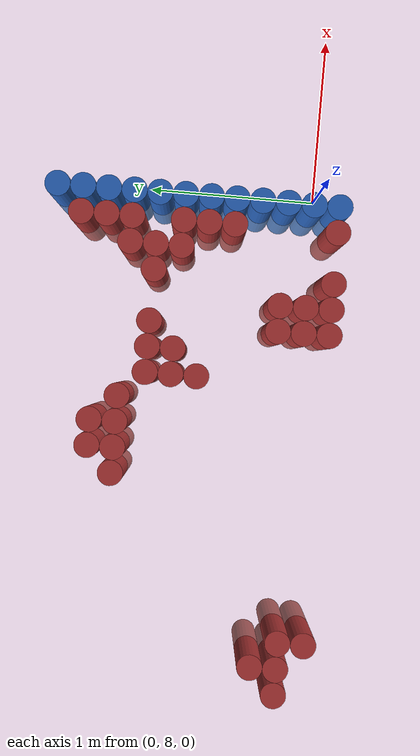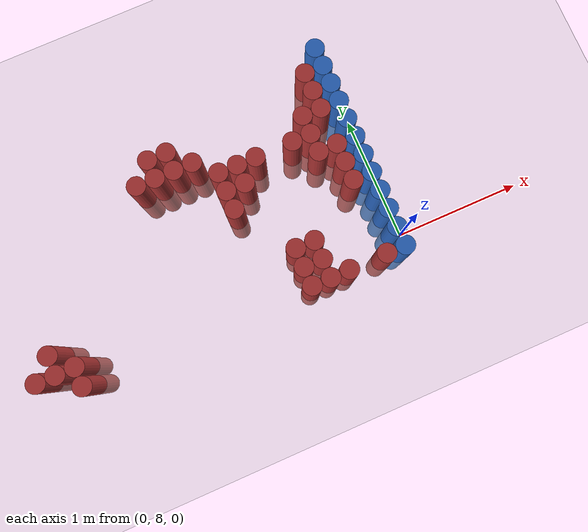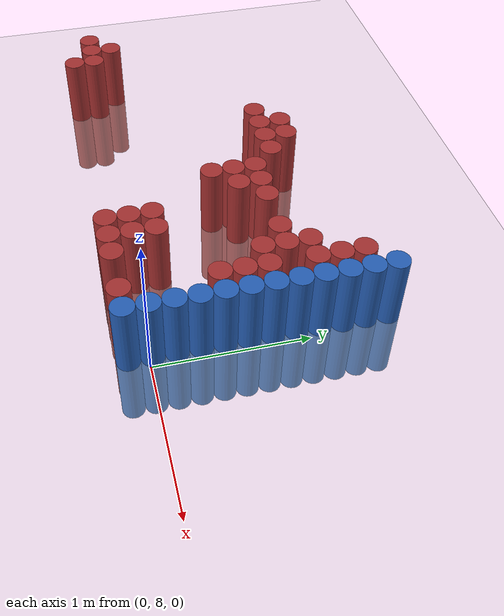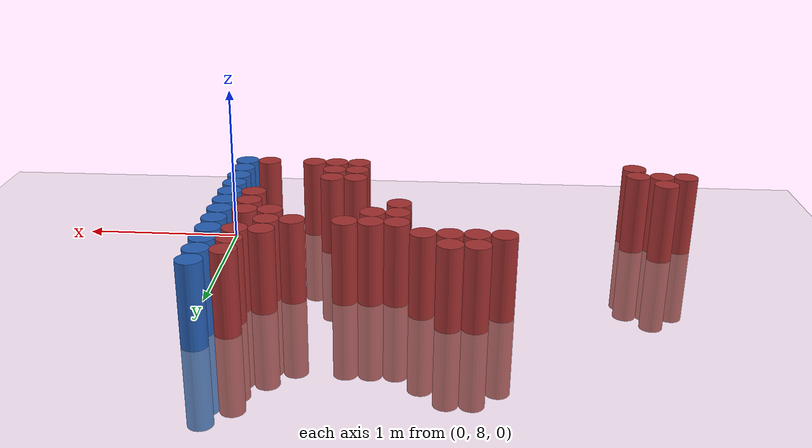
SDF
<sdf version="1.6">
 <world name="default">
  <model name="ground_plane">
   <static>1</static>
   <link name="link">
    <collision name="collision">
     <geometry><plane><normal>0 0 1</normal><size>100 100</size></plane></geometry>
     <surface><friction><ode><mu>100</mu><mu2>50</mu2></ode></friction></surface>
    </collision>
    <visual name="visual">
     <cast_shadows>0</cast_shadows>
     <geometry><plane><normal>0 0 1</normal><size>100 100</size></plane></geometry>
     <material>
      <script><uri>file://media/materials/scripts/gazebo.material</uri><name>Gazebo/Grey</name></script>
     </material>
    </visual>
   </link>
  </model>
  <model name="unit_cylinder_167">
   <static>1</static>
   <pose>-2.925000 8.025000 0.000000 0.000000 0.000000 0.000000</pose>
   <link name="link">
    <inertial>
     <mass>1</mass>
     <inertia><ixx>0.145833</ixx><ixy>0</ixy><ixz>0</ixz><iyy>0.145833</iyy><iyz>0</iyz><izz>0.125</izz></inertia>
    </inertial>
    <collision name="collision">
     <geometry><cylinder><radius>0.075000</radius><length>1</length></cylinder></geometry>
    </collision>
    <visual name="visual">
     <geometry><cylinder><radius>0.075000</radius><length>1</length></cylinder></geometry>
     <material>
      <ambient>0.648000 0.192000 0.192000 1</ambient>
      <diffuse>0.648000 0.192000 0.192000 1</diffuse>
     </material>
     <material>
      <script><name>Gazebo/Grey</name><uri>file://media/materials/scripts/gazebo.material</uri></script>
     </material>
    </visual>
   </link>
  </model>
  <model name="unit_cylinder_173">
   <static>1</static>
   <pose>-2.775000 8.025000 0.000000 0.000000 0.000000 0.000000</pose>
   <link name="link">
    <inertial>
     <mass>1</mass>
     <inertia><ixx>0.145833</ixx><ixy>0</ixy><ixz>0</ixz><iyy>0.145833</iyy><iyz>0</iyz><izz>0.125</izz></inertia>
    </inertial>
    <collision name="collision">
     <geometry><cylinder><radius>0.075000</radius><length>1</length></cylinder></geometry>
    </collision>
    <visual name="visual">
     <geometry><cylinder><radius>0.075000</radius><length>1</length></cylinder></geometry>
     <material>
      <ambient>0.648000 0.192000 0.192000 1</ambient>
      <diffuse>0.648000 0.192000 0.192000 1</diffuse>
     </material>
     <material>
      <script><name>Gazebo/Grey</name><uri>file://media/materials/scripts/gazebo.material</uri></script>
     </material>
    </visual>
   </link>
  </model>
  <model name="unit_cylinder_174">
   <static>1</static>
   <pose>-2.775000 8.175000 0.000000 0.000000 0.000000 0.000000</pose>
   <link name="link">
    <inertial>
     <mass>1</mass>
     <inertia><ixx>0.145833</ixx><ixy>0</ixy><ixz>0</ixz><iyy>0.145833</iyy><iyz>0</iyz><izz>0.125</izz></inertia>
    </inertial>
    <collision name="collision">
     <geometry><cylinder><radius>0.075000</radius><length>1</length></cylinder></geometry>
    </collision>
    <visual name="visual">
     <geometry><cylinder><radius>0.075000</radius><length>1</length></cylinder></geometry>
     <material>
      <ambient>0.648000 0.192000 0.192000 1</ambient>
      <diffuse>0.648000 0.192000 0.192000 1</diffuse>
     </material>
     <material>
      <script><name>Gazebo/Grey</name><uri>file://media/materials/scripts/gazebo.material</uri></script>
     </material>
    </visual>
   </link>
  </model>
  <model name="unit_cylinder_176">
   <static>1</static>
   <pose>-2.625000 7.875000 0.000000 0.000000 0.000000 0.000000</pose>
   <link name="link">
    <inertial>
     <mass>1</mass>
     <inertia><ixx>0.145833</ixx><ixy>0</ixy><ixz>0</ixz><iyy>0.145833</iyy><iyz>0</iyz><izz>0.125</izz></inertia>
    </inertial>
    <collision name="collision">
     <geometry><cylinder><radius>0.075000</radius><length>1</length></cylinder></geometry>
    </collision>
    <visual name="visual">
     <geometry><cylinder><radius>0.075000</radius><length>1</length></cylinder></geometry>
     <material>
      <ambient>0.648000 0.192000 0.192000 1</ambient>
      <diffuse>0.648000 0.192000 0.192000 1</diffuse>
     </material>
     <material>
      <script><name>Gazebo/Grey</name><uri>file://media/materials/scripts/gazebo.material</uri></script>
     </material>
    </visual>
   </link>
  </model>
  <model name="unit_cylinder_177">
   <static>1</static>
   <pose>-2.625000 8.025000 0.000000 0.000000 0.000000 0.000000</pose>
   <link name="link">
    <inertial>
     <mass>1</mass>
     <inertia><ixx>0.145833</ixx><ixy>0</ixy><ixz>0</ixz><iyy>0.145833</iyy><iyz>0</iyz><izz>0.125</izz></inertia>
    </inertial>
    <collision name="collision">
     <geometry><cylinder><radius>0.075000</radius><length>1</length></cylinder></geometry>
    </collision>
    <visual name="visual">
     <geometry><cylinder><radius>0.075000</radius><length>1</length></cylinder></geometry>
     <material>
      <ambient>0.648000 0.192000 0.192000 1</ambient>
      <diffuse>0.648000 0.192000 0.192000 1</diffuse>
     </material>
     <material>
      <script><name>Gazebo/Grey</name><uri>file://media/materials/scripts/gazebo.material</uri></script>
     </material>
    </visual>
   </link>
  </model>
  <model name="unit_cylinder_194">
   <static>1</static>
   <pose>-1.725000 9.075000 0.000000 0.000000 0.000000 0.000000</pose>
   <link name="link">
    <inertial>
     <mass>1</mass>
     <inertia><ixx>0.145833</ixx><ixy>0</ixy><ixz>0</ixz><iyy>0.145833</iyy><iyz>0</iyz><izz>0.125</izz></inertia>
    </inertial>
    <collision name="collision">
     <geometry><cylinder><radius>0.075000</radius><length>1</length></cylinder></geometry>
    </collision>
    <visual name="visual">
     <geometry><cylinder><radius>0.075000</radius><length>1</length></cylinder></geometry>
     <material>
      <ambient>0.648000 0.192000 0.192000 1</ambient>
      <diffuse>0.648000 0.192000 0.192000 1</diffuse>
     </material>
     <material>
      <script><name>Gazebo/Grey</name><uri>file://media/materials/scripts/gazebo.material</uri></script>
     </material>
    </visual>
   </link>
  </model>
  <model name="unit_cylinder_195">
   <static>1</static>
   <pose>-1.575000 9.075000 0.000000 0.000000 0.000000 0.000000</pose>
   <link name="link">
    <inertial>
     <mass>1</mass>
     <inertia><ixx>0.145833</ixx><ixy>0</ixy><ixz>0</ixz><iyy>0.145833</iyy><iyz>0</iyz><izz>0.125</izz></inertia>
    </inertial>
    <collision name="collision">
     <geometry><cylinder><radius>0.075000</radius><length>1</length></cylinder></geometry>
    </collision>
    <visual name="visual">
     <geometry><cylinder><radius>0.075000</radius><length>1</length></cylinder></geometry>
     <material>
      <ambient>0.648000 0.192000 0.192000 1</ambient>
      <diffuse>0.648000 0.192000 0.192000 1</diffuse>
     </material>
     <material>
      <script><name>Gazebo/Grey</name><uri>file://media/materials/scripts/gazebo.material</uri></script>
     </material>
    </visual>
   </link>
  </model>
  <model name="unit_cylinder_196">
   <static>1</static>
   <pose>-1.575000 9.225000 0.000000 0.000000 0.000000 0.000000</pose>
   <link name="link">
    <inertial>
     <mass>1</mass>
     <inertia><ixx>0.145833</ixx><ixy>0</ixy><ixz>0</ixz><iyy>0.145833</iyy><iyz>0</iyz><izz>0.125</izz></inertia>
    </inertial>
    <collision name="collision">
     <geometry><cylinder><radius>0.075000</radius><length>1</length></cylinder></geometry>
    </collision>
    <visual name="visual">
     <geometry><cylinder><radius>0.075000</radius><length>1</length></cylinder></geometry>
     <material>
      <ambient>0.648000 0.192000 0.192000 1</ambient>
      <diffuse>0.648000 0.192000 0.192000 1</diffuse>
     </material>
     <material>
      <script><name>Gazebo/Grey</name><uri>file://media/materials/scripts/gazebo.material</uri></script>
     </material>
    </visual>
   </link>
  </model>
  <model name="unit_cylinder_198">
   <static>1</static>
   <pose>-1.425000 9.075000 0.000000 0.000000 0.000000 0.000000</pose>
   <link name="link">
    <inertial>
     <mass>1</mass>
     <inertia><ixx>0.145833</ixx><ixy>0</ixy><ixz>0</ixz><iyy>0.145833</iyy><iyz>0</iyz><izz>0.125</izz></inertia>
    </inertial>
    <collision name="collision">
     <geometry><cylinder><radius>0.075000</radius><length>1</length></cylinder></geometry>
    </collision>
    <visual name="visual">
     <geometry><cylinder><radius>0.075000</radius><length>1</length></cylinder></geometry>
     <material>
      <ambient>0.648000 0.192000 0.192000 1</ambient>
      <diffuse>0.648000 0.192000 0.192000 1</diffuse>
     </material>
     <material>
      <script><name>Gazebo/Grey</name><uri>file://media/materials/scripts/gazebo.material</uri></script>
     </material>
    </visual>
   </link>
  </model>
  <model name="unit_cylinder_199">
   <static>1</static>
   <pose>-1.425000 9.225000 0.000000 0.000000 0.000000 0.000000</pose>
   <link name="link">
    <inertial>
     <mass>1</mass>
     <inertia><ixx>0.145833</ixx><ixy>0</ixy><ixz>0</ixz><iyy>0.145833</iyy><iyz>0</iyz><izz>0.125</izz></inertia>
    </inertial>
    <collision name="collision">
     <geometry><cylinder><radius>0.075000</radius><length>1</length></cylinder></geometry>
    </collision>
    <visual name="visual">
     <geometry><cylinder><radius>0.075000</radius><length>1</length></cylinder></geometry>
     <material>
      <ambient>0.648000 0.192000 0.192000 1</ambient>
      <diffuse>0.648000 0.192000 0.192000 1</diffuse>
     </material>
     <material>
      <script><name>Gazebo/Grey</name><uri>file://media/materials/scripts/gazebo.material</uri></script>
     </material>
    </visual>
   </link>
  </model>
  <model name="unit_cylinder_201">
   <static>1</static>
   <pose>-1.275000 9.075000 0.000000 0.000000 0.000000 0.000000</pose>
   <link name="link">
    <inertial>
     <mass>1</mass>
     <inertia><ixx>0.145833</ixx><ixy>0</ixy><ixz>0</ixz><iyy>0.145833</iyy><iyz>0</iyz><izz>0.125</izz></inertia>
    </inertial>
    <collision name="collision">
     <geometry><cylinder><radius>0.075000</radius><length>1</length></cylinder></geometry>
    </collision>
    <visual name="visual">
     <geometry><cylinder><radius>0.075000</radius><length>1</length></cylinder></geometry>
     <material>
      <ambient>0.648000 0.192000 0.192000 1</ambient>
      <diffuse>0.648000 0.192000 0.192000 1</diffuse>
     </material>
     <material>
      <script><name>Gazebo/Grey</name><uri>file://media/materials/scripts/gazebo.material</uri></script>
     </material>
    </visual>
   </link>
  </model>
  <model name="unit_cylinder_203">
   <static>1</static>
   <pose>-1.125000 8.625000 0.000000 0.000000 0.000000 0.000000</pose>
   <link name="link">
    <inertial>
     <mass>1</mass>
     <inertia><ixx>0.145833</ixx><ixy>0</ixy><ixz>0</ixz><iyy>0.145833</iyy><iyz>0</iyz><izz>0.125</izz></inertia>
    </inertial>
    <collision name="collision">
     <geometry><cylinder><radius>0.075000</radius><length>1</length></cylinder></geometry>
    </collision>
    <visual name="visual">
     <geometry><cylinder><radius>0.075000</radius><length>1</length></cylinder></geometry>
     <material>
      <ambient>0.648000 0.192000 0.192000 1</ambient>
      <diffuse>0.648000 0.192000 0.192000 1</diffuse>
     </material>
     <material>
      <script><name>Gazebo/Grey</name><uri>file://media/materials/scripts/gazebo.material</uri></script>
     </material>
    </visual>
   </link>
  </model>
  <model name="unit_cylinder_204">
   <static>1</static>
   <pose>-1.125000 8.775000 0.000000 0.000000 0.000000 0.000000</pose>
   <link name="link">
    <inertial>
     <mass>1</mass>
     <inertia><ixx>0.145833</ixx><ixy>0</ixy><ixz>0</ixz><iyy>0.145833</iyy><iyz>0</iyz><izz>0.125</izz></inertia>
    </inertial>
    <collision name="collision">
     <geometry><cylinder><radius>0.075000</radius><length>1</length></cylinder></geometry>
    </collision>
    <visual name="visual">
     <geometry><cylinder><radius>0.075000</radius><length>1</length></cylinder></geometry>
     <material>
      <ambient>0.648000 0.192000 0.192000 1</ambient>
      <diffuse>0.648000 0.192000 0.192000 1</diffuse>
     </material>
     <material>
      <script><name>Gazebo/Grey</name><uri>file://media/materials/scripts/gazebo.material</uri></script>
     </material>
    </visual>
   </link>
  </model>
  <model name="unit_cylinder_205">
   <static>1</static>
   <pose>-1.125000 8.925000 0.000000 0.000000 0.000000 0.000000</pose>
   <link name="link">
    <inertial>
     <mass>1</mass>
     <inertia><ixx>0.145833</ixx><ixy>0</ixy><ixz>0</ixz><iyy>0.145833</iyy><iyz>0</iyz><izz>0.125</izz></inertia>
    </inertial>
    <collision name="collision">
     <geometry><cylinder><radius>0.075000</radius><length>1</length></cylinder></geometry>
    </collision>
    <visual name="visual">
     <geometry><cylinder><radius>0.075000</radius><length>1</length></cylinder></geometry>
     <material>
      <ambient>0.648000 0.192000 0.192000 1</ambient>
      <diffuse>0.648000 0.192000 0.192000 1</diffuse>
     </material>
     <material>
      <script><name>Gazebo/Grey</name><uri>file://media/materials/scripts/gazebo.material</uri></script>
     </material>
    </visual>
   </link>
  </model>
  <model name="unit_cylinder_209">
   <static>1</static>
   <pose>-0.975000 8.775000 0.000000 0.000000 0.000000 0.000000</pose>
   <link name="link">
    <inertial>
     <mass>1</mass>
     <inertia><ixx>0.145833</ixx><ixy>0</ixy><ixz>0</ixz><iyy>0.145833</iyy><iyz>0</iyz><izz>0.125</izz></inertia>
    </inertial>
    <collision name="collision">
     <geometry><cylinder><radius>0.075000</radius><length>1</length></cylinder></geometry>
    </collision>
    <visual name="visual">
     <geometry><cylinder><radius>0.075000</radius><length>1</length></cylinder></geometry>
     <material>
      <ambient>0.648000 0.192000 0.192000 1</ambient>
      <diffuse>0.648000 0.192000 0.192000 1</diffuse>
     </material>
     <material>
      <script><name>Gazebo/Grey</name><uri>file://media/materials/scripts/gazebo.material</uri></script>
     </material>
    </visual>
   </link>
  </model>
  <model name="unit_cylinder_210">
   <static>1</static>
   <pose>-0.975000 8.925000 0.000000 0.000000 0.000000 0.000000</pose>
   <link name="link">
    <inertial>
     <mass>1</mass>
     <inertia><ixx>0.145833</ixx><ixy>0</ixy><ixz>0</ixz><iyy>0.145833</iyy><iyz>0</iyz><izz>0.125</izz></inertia>
    </inertial>
    <collision name="collision">
     <geometry><cylinder><radius>0.075000</radius><length>1</length></cylinder></geometry>
    </collision>
    <visual name="visual">
     <geometry><cylinder><radius>0.075000</radius><length>1</length></cylinder></geometry>
     <material>
      <ambient>0.648000 0.192000 0.192000 1</ambient>
      <diffuse>0.648000 0.192000 0.192000 1</diffuse>
     </material>
     <material>
      <script><name>Gazebo/Grey</name><uri>file://media/materials/scripts/gazebo.material</uri></script>
     </material>
    </visual>
   </link>
  </model>
  <model name="unit_cylinder_213">
   <static>1</static>
   <pose>-0.825000 7.875000 0.000000 0.000000 0.000000 0.000000</pose>
   <link name="link">
    <inertial>
     <mass>1</mass>
     <inertia><ixx>0.145833</ixx><ixy>0</ixy><ixz>0</ixz><iyy>0.145833</iyy><iyz>0</iyz><izz>0.125</izz></inertia>
    </inertial>
    <collision name="collision">
     <geometry><cylinder><radius>0.075000</radius><length>1</length></cylinder></geometry>
    </collision>
    <visual name="visual">
     <geometry><cylinder><radius>0.075000</radius><length>1</length></cylinder></geometry>
     <material>
      <ambient>0.648000 0.192000 0.192000 1</ambient>
      <diffuse>0.648000 0.192000 0.192000 1</diffuse>
     </material>
     <material>
      <script><name>Gazebo/Grey</name><uri>file://media/materials/scripts/gazebo.material</uri></script>
     </material>
    </visual>
   </link>
  </model>
  <model name="unit_cylinder_214">
   <static>1</static>
   <pose>-0.825000 8.025000 0.000000 0.000000 0.000000 0.000000</pose>
   <link name="link">
    <inertial>
     <mass>1</mass>
     <inertia><ixx>0.145833</ixx><ixy>0</ixy><ixz>0</ixz><iyy>0.145833</iyy><iyz>0</iyz><izz>0.125</izz></inertia>
    </inertial>
    <collision name="collision">
     <geometry><cylinder><radius>0.075000</radius><length>1</length></cylinder></geometry>
    </collision>
    <visual name="visual">
     <geometry><cylinder><radius>0.075000</radius><length>1</length></cylinder></geometry>
     <material>
      <ambient>0.648000 0.192000 0.192000 1</ambient>
      <diffuse>0.648000 0.192000 0.192000 1</diffuse>
     </material>
     <material>
      <script><name>Gazebo/Grey</name><uri>file://media/materials/scripts/gazebo.material</uri></script>
     </material>
    </visual>
   </link>
  </model>
  <model name="unit_cylinder_215">
   <static>1</static>
   <pose>-0.825000 8.175000 0.000000 0.000000 0.000000 0.000000</pose>
   <link name="link">
    <inertial>
     <mass>1</mass>
     <inertia><ixx>0.145833</ixx><ixy>0</ixy><ixz>0</ixz><iyy>0.145833</iyy><iyz>0</iyz><izz>0.125</izz></inertia>
    </inertial>
    <collision name="collision">
     <geometry><cylinder><radius>0.075000</radius><length>1</length></cylinder></geometry>
    </collision>
    <visual name="visual">
     <geometry><cylinder><radius>0.075000</radius><length>1</length></cylinder></geometry>
     <material>
      <ambient>0.648000 0.192000 0.192000 1</ambient>
      <diffuse>0.648000 0.192000 0.192000 1</diffuse>
     </material>
     <material>
      <script><name>Gazebo/Grey</name><uri>file://media/materials/scripts/gazebo.material</uri></script>
     </material>
    </visual>
   </link>
  </model>
  <model name="unit_cylinder_216">
   <static>1</static>
   <pose>-0.825000 8.925000 0.000000 0.000000 0.000000 0.000000</pose>
   <link name="link">
    <inertial>
     <mass>1</mass>
     <inertia><ixx>0.145833</ixx><ixy>0</ixy><ixz>0</ixz><iyy>0.145833</iyy><iyz>0</iyz><izz>0.125</izz></inertia>
    </inertial>
    <collision name="collision">
     <geometry><cylinder><radius>0.075000</radius><length>1</length></cylinder></geometry>
    </collision>
    <visual name="visual">
     <geometry><cylinder><radius>0.075000</radius><length>1</length></cylinder></geometry>
     <material>
      <ambient>0.648000 0.192000 0.192000 1</ambient>
      <diffuse>0.648000 0.192000 0.192000 1</diffuse>
     </material>
     <material>
      <script><name>Gazebo/Grey</name><uri>file://media/materials/scripts/gazebo.material</uri></script>
     </material>
    </visual>
   </link>
  </model>
  <model name="unit_cylinder_221">
   <static>1</static>
   <pose>-0.675000 7.875000 0.000000 0.000000 0.000000 0.000000</pose>
   <link name="link">
    <inertial>
     <mass>1</mass>
     <inertia><ixx>0.145833</ixx><ixy>0</ixy><ixz>0</ixz><iyy>0.145833</iyy><iyz>0</iyz><izz>0.125</izz></inertia>
    </inertial>
    <collision name="collision">
     <geometry><cylinder><radius>0.075000</radius><length>1</length></cylinder></geometry>
    </collision>
    <visual name="visual">
     <geometry><cylinder><radius>0.075000</radius><length>1</length></cylinder></geometry>
     <material>
      <ambient>0.648000 0.192000 0.192000 1</ambient>
      <diffuse>0.648000 0.192000 0.192000 1</diffuse>
     </material>
     <material>
      <script><name>Gazebo/Grey</name><uri>file://media/materials/scripts/gazebo.material</uri></script>
     </material>
    </visual>
   </link>
  </model>
  <model name="unit_cylinder_222">
   <static>1</static>
   <pose>-0.675000 8.025000 0.000000 0.000000 0.000000 0.000000</pose>
   <link name="link">
    <inertial>
     <mass>1</mass>
     <inertia><ixx>0.145833</ixx><ixy>0</ixy><ixz>0</ixz><iyy>0.145833</iyy><iyz>0</iyz><izz>0.125</izz></inertia>
    </inertial>
    <collision name="collision">
     <geometry><cylinder><radius>0.075000</radius><length>1</length></cylinder></geometry>
    </collision>
    <visual name="visual">
     <geometry><cylinder><radius>0.075000</radius><length>1</length></cylinder></geometry>
     <material>
      <ambient>0.648000 0.192000 0.192000 1</ambient>
      <diffuse>0.648000 0.192000 0.192000 1</diffuse>
     </material>
     <material>
      <script><name>Gazebo/Grey</name><uri>file://media/materials/scripts/gazebo.material</uri></script>
     </material>
    </visual>
   </link>
  </model>
  <model name="unit_cylinder_223">
   <static>1</static>
   <pose>-0.675000 8.175000 0.000000 0.000000 0.000000 0.000000</pose>
   <link name="link">
    <inertial>
     <mass>1</mass>
     <inertia><ixx>0.145833</ixx><ixy>0</ixy><ixz>0</ixz><iyy>0.145833</iyy><iyz>0</iyz><izz>0.125</izz></inertia>
    </inertial>
    <collision name="collision">
     <geometry><cylinder><radius>0.075000</radius><length>1</length></cylinder></geometry>
    </collision>
    <visual name="visual">
     <geometry><cylinder><radius>0.075000</radius><length>1</length></cylinder></geometry>
     <material>
      <ambient>0.648000 0.192000 0.192000 1</ambient>
      <diffuse>0.648000 0.192000 0.192000 1</diffuse>
     </material>
     <material>
      <script><name>Gazebo/Grey</name><uri>file://media/materials/scripts/gazebo.material</uri></script>
     </material>
    </visual>
   </link>
  </model>
  <model name="unit_cylinder_228">
   <static>1</static>
   <pose>-0.525000 7.875000 0.000000 0.000000 0.000000 0.000000</pose>
   <link name="link">
    <inertial>
     <mass>1</mass>
     <inertia><ixx>0.145833</ixx><ixy>0</ixy><ixz>0</ixz><iyy>0.145833</iyy><iyz>0</iyz><izz>0.125</izz></inertia>
    </inertial>
    <collision name="collision">
     <geometry><cylinder><radius>0.075000</radius><length>1</length></cylinder></geometry>
    </collision>
    <visual name="visual">
     <geometry><cylinder><radius>0.075000</radius><length>1</length></cylinder></geometry>
     <material>
      <ambient>0.648000 0.192000 0.192000 1</ambient>
      <diffuse>0.648000 0.192000 0.192000 1</diffuse>
     </material>
     <material>
      <script><name>Gazebo/Grey</name><uri>file://media/materials/scripts/gazebo.material</uri></script>
     </material>
    </visual>
   </link>
  </model>
  <model name="unit_cylinder_229">
   <static>1</static>
   <pose>-0.525000 8.925000 0.000000 0.000000 0.000000 0.000000</pose>
   <link name="link">
    <inertial>
     <mass>1</mass>
     <inertia><ixx>0.145833</ixx><ixy>0</ixy><ixz>0</ixz><iyy>0.145833</iyy><iyz>0</iyz><izz>0.125</izz></inertia>
    </inertial>
    <collision name="collision">
     <geometry><cylinder><radius>0.075000</radius><length>1</length></cylinder></geometry>
    </collision>
    <visual name="visual">
     <geometry><cylinder><radius>0.075000</radius><length>1</length></cylinder></geometry>
     <material>
      <ambient>0.648000 0.192000 0.192000 1</ambient>
      <diffuse>0.648000 0.192000 0.192000 1</diffuse>
     </material>
     <material>
      <script><name>Gazebo/Grey</name><uri>file://media/materials/scripts/gazebo.material</uri></script>
     </material>
    </visual>
   </link>
  </model>
  <model name="unit_cylinder_233">
   <static>1</static>
   <pose>-0.375000 8.775000 0.000000 0.000000 0.000000 0.000000</pose>
   <link name="link">
    <inertial>
     <mass>1</mass>
     <inertia><ixx>0.145833</ixx><ixy>0</ixy><ixz>0</ixz><iyy>0.145833</iyy><iyz>0</iyz><izz>0.125</izz></inertia>
    </inertial>
    <collision name="collision">
     <geometry><cylinder><radius>0.075000</radius><length>1</length></cylinder></geometry>
    </collision>
    <visual name="visual">
     <geometry><cylinder><radius>0.075000</radius><length>1</length></cylinder></geometry>
     <material>
      <ambient>0.648000 0.192000 0.192000 1</ambient>
      <diffuse>0.648000 0.192000 0.192000 1</diffuse>
     </material>
     <material>
      <script><name>Gazebo/Grey</name><uri>file://media/materials/scripts/gazebo.material</uri></script>
     </material>
    </visual>
   </link>
  </model>
  <model name="unit_cylinder_234">
   <static>1</static>
   <pose>-0.375000 8.925000 0.000000 0.000000 0.000000 0.000000</pose>
   <link name="link">
    <inertial>
     <mass>1</mass>
     <inertia><ixx>0.145833</ixx><ixy>0</ixy><ixz>0</ixz><iyy>0.145833</iyy><iyz>0</iyz><izz>0.125</izz></inertia>
    </inertial>
    <collision name="collision">
     <geometry><cylinder><radius>0.075000</radius><length>1</length></cylinder></geometry>
    </collision>
    <visual name="visual">
     <geometry><cylinder><radius>0.075000</radius><length>1</length></cylinder></geometry>
     <material>
      <ambient>0.648000 0.192000 0.192000 1</ambient>
      <diffuse>0.648000 0.192000 0.192000 1</diffuse>
     </material>
     <material>
      <script><name>Gazebo/Grey</name><uri>file://media/materials/scripts/gazebo.material</uri></script>
     </material>
    </visual>
   </link>
  </model>
  <model name="unit_cylinder_235">
   <static>1</static>
   <pose>-0.375000 9.075000 0.000000 0.000000 0.000000 0.000000</pose>
   <link name="link">
    <inertial>
     <mass>1</mass>
     <inertia><ixx>0.145833</ixx><ixy>0</ixy><ixz>0</ixz><iyy>0.145833</iyy><iyz>0</iyz><izz>0.125</izz></inertia>
    </inertial>
    <collision name="collision">
     <geometry><cylinder><radius>0.075000</radius><length>1</length></cylinder></geometry>
    </collision>
    <visual name="visual">
     <geometry><cylinder><radius>0.075000</radius><length>1</length></cylinder></geometry>
     <material>
      <ambient>0.648000 0.192000 0.192000 1</ambient>
      <diffuse>0.648000 0.192000 0.192000 1</diffuse>
     </material>
     <material>
      <script><name>Gazebo/Grey</name><uri>file://media/materials/scripts/gazebo.material</uri></script>
     </material>
    </visual>
   </link>
  </model>
  <model name="unit_cylinder_242">
   <static>1</static>
   <pose>-0.225000 7.875000 0.000000 0.000000 0.000000 0.000000</pose>
   <link name="link">
    <inertial>
     <mass>1</mass>
     <inertia><ixx>0.145833</ixx><ixy>0</ixy><ixz>0</ixz><iyy>0.145833</iyy><iyz>0</iyz><izz>0.125</izz></inertia>
    </inertial>
    <collision name="collision">
     <geometry><cylinder><radius>0.075000</radius><length>1</length></cylinder></geometry>
    </collision>
    <visual name="visual">
     <geometry><cylinder><radius>0.075000</radius><length>1</length></cylinder></geometry>
     <material>
      <ambient>0.648000 0.192000 0.192000 1</ambient>
      <diffuse>0.648000 0.192000 0.192000 1</diffuse>
     </material>
     <material>
      <script><name>Gazebo/Grey</name><uri>file://media/materials/scripts/gazebo.material</uri></script>
     </material>
    </visual>
   </link>
  </model>
  <model name="unit_cylinder_243">
   <static>1</static>
   <pose>-0.225000 8.475000 0.000000 0.000000 0.000000 0.000000</pose>
   <link name="link">
    <inertial>
     <mass>1</mass>
     <inertia><ixx>0.145833</ixx><ixy>0</ixy><ixz>0</ixz><iyy>0.145833</iyy><iyz>0</iyz><izz>0.125</izz></inertia>
    </inertial>
    <collision name="collision">
     <geometry><cylinder><radius>0.075000</radius><length>1</length></cylinder></geometry>
    </collision>
    <visual name="visual">
     <geometry><cylinder><radius>0.075000</radius><length>1</length></cylinder></geometry>
     <material>
      <ambient>0.648000 0.192000 0.192000 1</ambient>
      <diffuse>0.648000 0.192000 0.192000 1</diffuse>
     </material>
     <material>
      <script><name>Gazebo/Grey</name><uri>file://media/materials/scripts/gazebo.material</uri></script>
     </material>
    </visual>
   </link>
  </model>
  <model name="unit_cylinder_244">
   <static>1</static>
   <pose>-0.225000 8.625000 0.000000 0.000000 0.000000 0.000000</pose>
   <link name="link">
    <inertial>
     <mass>1</mass>
     <inertia><ixx>0.145833</ixx><ixy>0</ixy><ixz>0</ixz><iyy>0.145833</iyy><iyz>0</iyz><izz>0.125</izz></inertia>
    </inertial>
    <collision name="collision">
     <geometry><cylinder><radius>0.075000</radius><length>1</length></cylinder></geometry>
    </collision>
    <visual name="visual">
     <geometry><cylinder><radius>0.075000</radius><length>1</length></cylinder></geometry>
     <material>
      <ambient>0.648000 0.192000 0.192000 1</ambient>
      <diffuse>0.648000 0.192000 0.192000 1</diffuse>
     </material>
     <material>
      <script><name>Gazebo/Grey</name><uri>file://media/materials/scripts/gazebo.material</uri></script>
     </material>
    </visual>
   </link>
  </model>
  <model name="unit_cylinder_245">
   <static>1</static>
   <pose>-0.225000 8.775000 0.000000 0.000000 0.000000 0.000000</pose>
   <link name="link">
    <inertial>
     <mass>1</mass>
     <inertia><ixx>0.145833</ixx><ixy>0</ixy><ixz>0</ixz><iyy>0.145833</iyy><iyz>0</iyz><izz>0.125</izz></inertia>
    </inertial>
    <collision name="collision">
     <geometry><cylinder><radius>0.075000</radius><length>1</length></cylinder></geometry>
    </collision>
    <visual name="visual">
     <geometry><cylinder><radius>0.075000</radius><length>1</length></cylinder></geometry>
     <material>
      <ambient>0.648000 0.192000 0.192000 1</ambient>
      <diffuse>0.648000 0.192000 0.192000 1</diffuse>
     </material>
     <material>
      <script><name>Gazebo/Grey</name><uri>file://media/materials/scripts/gazebo.material</uri></script>
     </material>
    </visual>
   </link>
  </model>
  <model name="unit_cylinder_246">
   <static>1</static>
   <pose>-0.225000 9.075000 0.000000 0.000000 0.000000 0.000000</pose>
   <link name="link">
    <inertial>
     <mass>1</mass>
     <inertia><ixx>0.145833</ixx><ixy>0</ixy><ixz>0</ixz><iyy>0.145833</iyy><iyz>0</iyz><izz>0.125</izz></inertia>
    </inertial>
    <collision name="collision">
     <geometry><cylinder><radius>0.075000</radius><length>1</length></cylinder></geometry>
    </collision>
    <visual name="visual">
     <geometry><cylinder><radius>0.075000</radius><length>1</length></cylinder></geometry>
     <material>
      <ambient>0.648000 0.192000 0.192000 1</ambient>
      <diffuse>0.648000 0.192000 0.192000 1</diffuse>
     </material>
     <material>
      <script><name>Gazebo/Grey</name><uri>file://media/materials/scripts/gazebo.material</uri></script>
     </material>
    </visual>
   </link>
  </model>
  <model name="unit_cylinder_247">
   <static>1</static>
   <pose>-0.225000 9.225000 0.000000 0.000000 0.000000 0.000000</pose>
   <link name="link">
    <inertial>
     <mass>1</mass>
     <inertia><ixx>0.145833</ixx><ixy>0</ixy><ixz>0</ixz><iyy>0.145833</iyy><iyz>0</iyz><izz>0.125</izz></inertia>
    </inertial>
    <collision name="collision">
     <geometry><cylinder><radius>0.075000</radius><length>1</length></cylinder></geometry>
    </collision>
    <visual name="visual">
     <geometry><cylinder><radius>0.075000</radius><length>1</length></cylinder></geometry>
     <material>
      <ambient>0.648000 0.192000 0.192000 1</ambient>
      <diffuse>0.648000 0.192000 0.192000 1</diffuse>
     </material>
     <material>
      <script><name>Gazebo/Grey</name><uri>file://media/materials/scripts/gazebo.material</uri></script>
     </material>
    </visual>
   </link>
  </model>
  <model name="unit_cylinder_248">
   <static>1</static>
   <pose>-0.225000 9.375000 0.000000 0.000000 0.000000 0.000000</pose>
   <link name="link">
    <inertial>
     <mass>1</mass>
     <inertia><ixx>0.145833</ixx><ixy>0</ixy><ixz>0</ixz><iyy>0.145833</iyy><iyz>0</iyz><izz>0.125</izz></inertia>
    </inertial>
    <collision name="collision">
     <geometry><cylinder><radius>0.075000</radius><length>1</length></cylinder></geometry>
    </collision>
    <visual name="visual">
     <geometry><cylinder><radius>0.075000</radius><length>1</length></cylinder></geometry>
     <material>
      <ambient>0.648000 0.192000 0.192000 1</ambient>
      <diffuse>0.648000 0.192000 0.192000 1</diffuse>
     </material>
     <material>
      <script><name>Gazebo/Grey</name><uri>file://media/materials/scripts/gazebo.material</uri></script>
     </material>
    </visual>
   </link>
  </model>
  <model name="unit_cylinder_267">
   <static>1</static>
   <pose>-0.075000 7.875000 0.000000 0.000000 0.000000 0.000000</pose>
   <link name="link">
    <inertial>
     <mass>1</mass>
     <inertia><ixx>0.145833</ixx><ixy>0</ixy><ixz>0</ixz><iyy>0.145833</iyy><iyz>0</iyz><izz>0.125</izz></inertia>
    </inertial>
    <collision name="collision">
     <geometry><cylinder><radius>0.075000</radius><length>1</length></cylinder></geometry>
    </collision>
    <visual name="visual">
     <geometry><cylinder><radius>0.075000</radius><length>1</length></cylinder></geometry>
     <material>
      <ambient>0.152000 0.379000 0.720000 1</ambient>
      <diffuse>0.152000 0.379000 0.720000 1</diffuse>
     </material>
     <material>
      <script><name>Gazebo/Grey</name><uri>file://media/materials/scripts/gazebo.material</uri></script>
     </material>
    </visual>
   </link>
  </model>
  <model name="unit_cylinder_268">
   <static>1</static>
   <pose>-0.075000 8.025000 0.000000 0.000000 0.000000 0.000000</pose>
   <link name="link">
    <inertial>
     <mass>1</mass>
     <inertia><ixx>0.145833</ixx><ixy>0</ixy><ixz>0</ixz><iyy>0.145833</iyy><iyz>0</iyz><izz>0.125</izz></inertia>
    </inertial>
    <collision name="collision">
     <geometry><cylinder><radius>0.075000</radius><length>1</length></cylinder></geometry>
    </collision>
    <visual name="visual">
     <geometry><cylinder><radius>0.075000</radius><length>1</length></cylinder></geometry>
     <material>
      <ambient>0.152000 0.379000 0.720000 1</ambient>
      <diffuse>0.152000 0.379000 0.720000 1</diffuse>
     </material>
     <material>
      <script><name>Gazebo/Grey</name><uri>file://media/materials/scripts/gazebo.material</uri></script>
     </material>
    </visual>
   </link>
  </model>
  <model name="unit_cylinder_269">
   <static>1</static>
   <pose>-0.075000 8.175000 0.000000 0.000000 0.000000 0.000000</pose>
   <link name="link">
    <inertial>
     <mass>1</mass>
     <inertia><ixx>0.145833</ixx><ixy>0</ixy><ixz>0</ixz><iyy>0.145833</iyy><iyz>0</iyz><izz>0.125</izz></inertia>
    </inertial>
    <collision name="collision">
     <geometry><cylinder><radius>0.075000</radius><length>1</length></cylinder></geometry>
    </collision>
    <visual name="visual">
     <geometry><cylinder><radius>0.075000</radius><length>1</length></cylinder></geometry>
     <material>
      <ambient>0.152000 0.379000 0.720000 1</ambient>
      <diffuse>0.152000 0.379000 0.720000 1</diffuse>
     </material>
     <material>
      <script><name>Gazebo/Grey</name><uri>file://media/materials/scripts/gazebo.material</uri></script>
     </material>
    </visual>
   </link>
  </model>
  <model name="unit_cylinder_270">
   <static>1</static>
   <pose>-0.075000 8.325000 0.000000 0.000000 0.000000 0.000000</pose>
   <link name="link">
    <inertial>
     <mass>1</mass>
     <inertia><ixx>0.145833</ixx><ixy>0</ixy><ixz>0</ixz><iyy>0.145833</iyy><iyz>0</iyz><izz>0.125</izz></inertia>
    </inertial>
    <collision name="collision">
     <geometry><cylinder><radius>0.075000</radius><length>1</length></cylinder></geometry>
    </collision>
    <visual name="visual">
     <geometry><cylinder><radius>0.075000</radius><length>1</length></cylinder></geometry>
     <material>
      <ambient>0.152000 0.379000 0.720000 1</ambient>
      <diffuse>0.152000 0.379000 0.720000 1</diffuse>
     </material>
     <material>
      <script><name>Gazebo/Grey</name><uri>file://media/materials/scripts/gazebo.material</uri></script>
     </material>
    </visual>
   </link>
  </model>
  <model name="unit_cylinder_271">
   <static>1</static>
   <pose>-0.075000 8.475000 0.000000 0.000000 0.000000 0.000000</pose>
   <link name="link">
    <inertial>
     <mass>1</mass>
     <inertia><ixx>0.145833</ixx><ixy>0</ixy><ixz>0</ixz><iyy>0.145833</iyy><iyz>0</iyz><izz>0.125</izz></inertia>
    </inertial>
    <collision name="collision">
     <geometry><cylinder><radius>0.075000</radius><length>1</length></cylinder></geometry>
    </collision>
    <visual name="visual">
     <geometry><cylinder><radius>0.075000</radius><length>1</length></cylinder></geometry>
     <material>
      <ambient>0.152000 0.379000 0.720000 1</ambient>
      <diffuse>0.152000 0.379000 0.720000 1</diffuse>
     </material>
     <material>
      <script><name>Gazebo/Grey</name><uri>file://media/materials/scripts/gazebo.material</uri></script>
     </material>
    </visual>
   </link>
  </model>
  <model name="unit_cylinder_272">
   <static>1</static>
   <pose>-0.075000 8.625000 0.000000 0.000000 0.000000 0.000000</pose>
   <link name="link">
    <inertial>
     <mass>1</mass>
     <inertia><ixx>0.145833</ixx><ixy>0</ixy><ixz>0</ixz><iyy>0.145833</iyy><iyz>0</iyz><izz>0.125</izz></inertia>
    </inertial>
    <collision name="collision">
     <geometry><cylinder><radius>0.075000</radius><length>1</length></cylinder></geometry>
    </collision>
    <visual name="visual">
     <geometry><cylinder><radius>0.075000</radius><length>1</length></cylinder></geometry>
     <material>
      <ambient>0.152000 0.379000 0.720000 1</ambient>
      <diffuse>0.152000 0.379000 0.720000 1</diffuse>
     </material>
     <material>
      <script><name>Gazebo/Grey</name><uri>file://media/materials/scripts/gazebo.material</uri></script>
     </material>
    </visual>
   </link>
  </model>
  <model name="unit_cylinder_273">
   <static>1</static>
   <pose>-0.075000 8.775000 0.000000 0.000000 0.000000 0.000000</pose>
   <link name="link">
    <inertial>
     <mass>1</mass>
     <inertia><ixx>0.145833</ixx><ixy>0</ixy><ixz>0</ixz><iyy>0.145833</iyy><iyz>0</iyz><izz>0.125</izz></inertia>
    </inertial>
    <collision name="collision">
     <geometry><cylinder><radius>0.075000</radius><length>1</length></cylinder></geometry>
    </collision>
    <visual name="visual">
     <geometry><cylinder><radius>0.075000</radius><length>1</length></cylinder></geometry>
     <material>
      <ambient>0.152000 0.379000 0.720000 1</ambient>
      <diffuse>0.152000 0.379000 0.720000 1</diffuse>
     </material>
     <material>
      <script><name>Gazebo/Grey</name><uri>file://media/materials/scripts/gazebo.material</uri></script>
     </material>
    </visual>
   </link>
  </model>
  <model name="unit_cylinder_274">
   <static>1</static>
   <pose>-0.075000 8.925000 0.000000 0.000000 0.000000 0.000000</pose>
   <link name="link">
    <inertial>
     <mass>1</mass>
     <inertia><ixx>0.145833</ixx><ixy>0</ixy><ixz>0</ixz><iyy>0.145833</iyy><iyz>0</iyz><izz>0.125</izz></inertia>
    </inertial>
    <collision name="collision">
     <geometry><cylinder><radius>0.075000</radius><length>1</length></cylinder></geometry>
    </collision>
    <visual name="visual">
     <geometry><cylinder><radius>0.075000</radius><length>1</length></cylinder></geometry>
     <material>
      <ambient>0.152000 0.379000 0.720000 1</ambient>
      <diffuse>0.152000 0.379000 0.720000 1</diffuse>
     </material>
     <material>
      <script><name>Gazebo/Grey</name><uri>file://media/materials/scripts/gazebo.material</uri></script>
     </material>
    </visual>
   </link>
  </model>
  <model name="unit_cylinder_275">
   <static>1</static>
   <pose>-0.075000 9.075000 0.000000 0.000000 0.000000 0.000000</pose>
   <link name="link">
    <inertial>
     <mass>1</mass>
     <inertia><ixx>0.145833</ixx><ixy>0</ixy><ixz>0</ixz><iyy>0.145833</iyy><iyz>0</iyz><izz>0.125</izz></inertia>
    </inertial>
    <collision name="collision">
     <geometry><cylinder><radius>0.075000</radius><length>1</length></cylinder></geometry>
    </collision>
    <visual name="visual">
     <geometry><cylinder><radius>0.075000</radius><length>1</length></cylinder></geometry>
     <material>
      <ambient>0.152000 0.379000 0.720000 1</ambient>
      <diffuse>0.152000 0.379000 0.720000 1</diffuse>
     </material>
     <material>
      <script><name>Gazebo/Grey</name><uri>file://media/materials/scripts/gazebo.material</uri></script>
     </material>
    </visual>
   </link>
  </model>
  <model name="unit_cylinder_276">
   <static>1</static>
   <pose>-0.075000 9.225000 0.000000 0.000000 0.000000 0.000000</pose>
   <link name="link">
    <inertial>
     <mass>1</mass>
     <inertia><ixx>0.145833</ixx><ixy>0</ixy><ixz>0</ixz><iyy>0.145833</iyy><iyz>0</iyz><izz>0.125</izz></inertia>
    </inertial>
    <collision name="collision">
     <geometry><cylinder><radius>0.075000</radius><length>1</length></cylinder></geometry>
    </collision>
    <visual name="visual">
     <geometry><cylinder><radius>0.075000</radius><length>1</length></cylinder></geometry>
     <material>
      <ambient>0.152000 0.379000 0.720000 1</ambient>
      <diffuse>0.152000 0.379000 0.720000 1</diffuse>
     </material>
     <material>
      <script><name>Gazebo/Grey</name><uri>file://media/materials/scripts/gazebo.material</uri></script>
     </material>
    </visual>
   </link>
  </model>
  <model name="unit_cylinder_277">
   <static>1</static>
   <pose>-0.075000 9.375000 0.000000 0.000000 0.000000 0.000000</pose>
   <link name="link">
    <inertial>
     <mass>1</mass>
     <inertia><ixx>0.145833</ixx><ixy>0</ixy><ixz>0</ixz><iyy>0.145833</iyy><iyz>0</iyz><izz>0.125</izz></inertia>
    </inertial>
    <collision name="collision">
     <geometry><cylinder><radius>0.075000</radius><length>1</length></cylinder></geometry>
    </collision>
    <visual name="visual">
     <geometry><cylinder><radius>0.075000</radius><length>1</length></cylinder></geometry>
     <material>
      <ambient>0.152000 0.379000 0.720000 1</ambient>
      <diffuse>0.152000 0.379000 0.720000 1</diffuse>
     </material>
     <material>
      <script><name>Gazebo/Grey</name><uri>file://media/materials/scripts/gazebo.material</uri></script>
     </material>
    </visual>
   </link>
  </model>
  <model name="unit_cylinder_278">
   <static>1</static>
   <pose>-0.075000 9.525000 0.000000 0.000000 0.000000 0.000000</pose>
   <link name="link">
    <inertial>
     <mass>1</mass>
     <inertia><ixx>0.145833</ixx><ixy>0</ixy><ixz>0</ixz><iyy>0.145833</iyy><iyz>0</iyz><izz>0.125</izz></inertia>
    </inertial>
    <collision name="collision">
     <geometry><cylinder><radius>0.075000</radius><length>1</length></cylinder></geometry>
    </collision>
    <visual name="visual">
     <geometry><cylinder><radius>0.075000</radius><length>1</length></cylinder></geometry>
     <material>
      <ambient>0.152000 0.379000 0.720000 1</ambient>
      <diffuse>0.152000 0.379000 0.720000 1</diffuse>
     </material>
     <material>
      <script><name>Gazebo/Grey</name><uri>file://media/materials/scripts/gazebo.material</uri></script>
     </material>
    </visual>
   </link>
  </model>
 </world>
</sdf>
